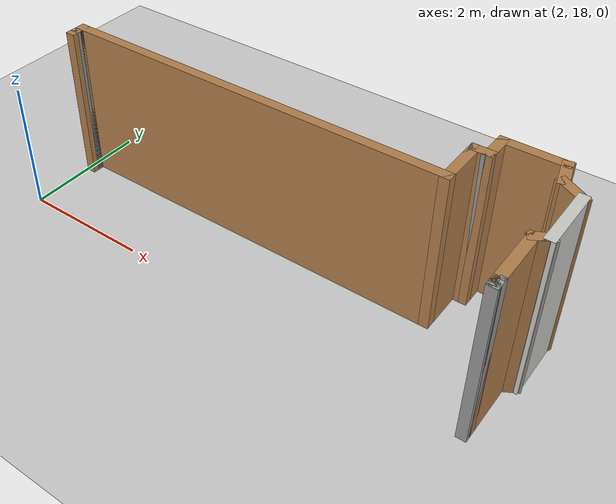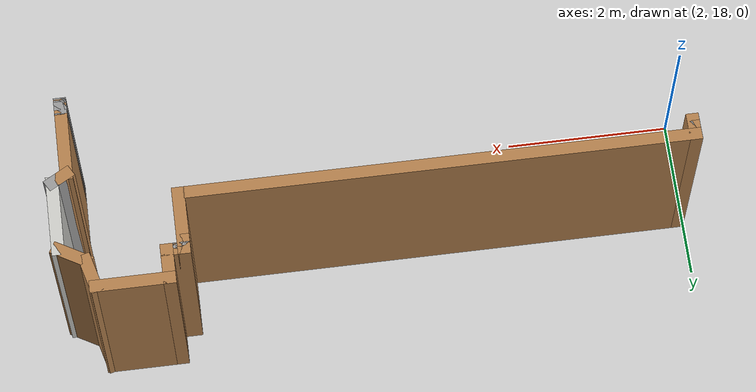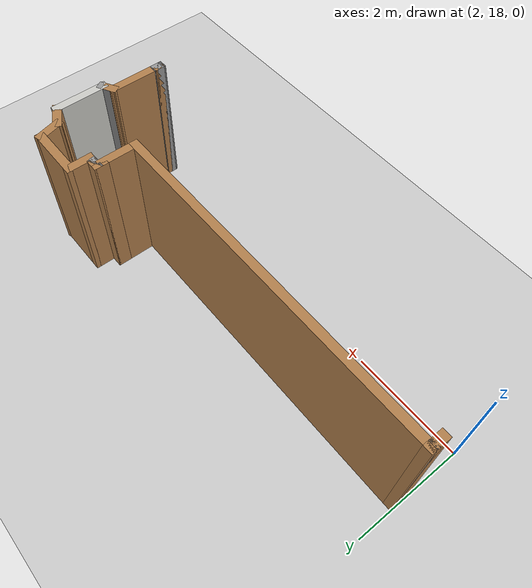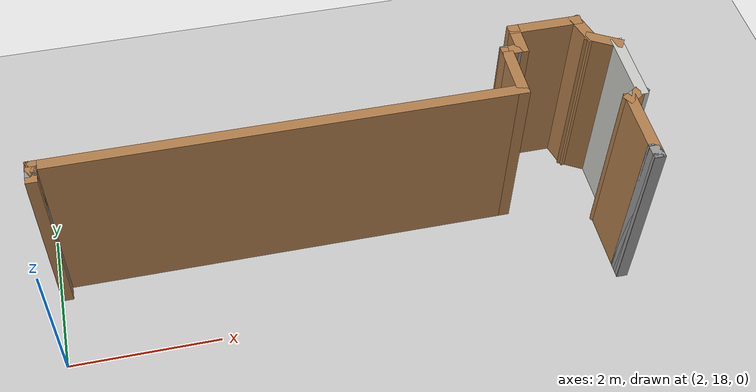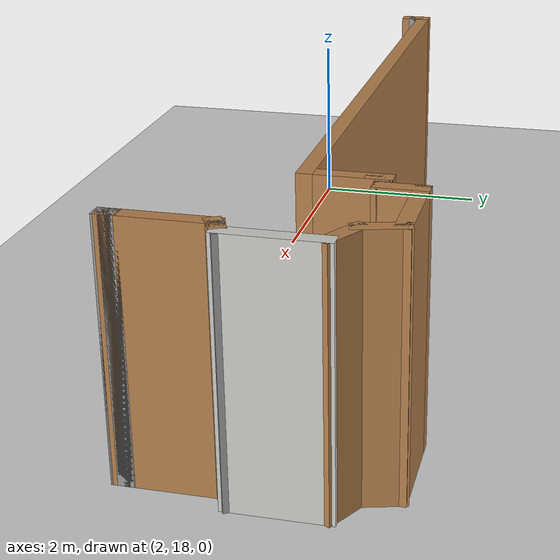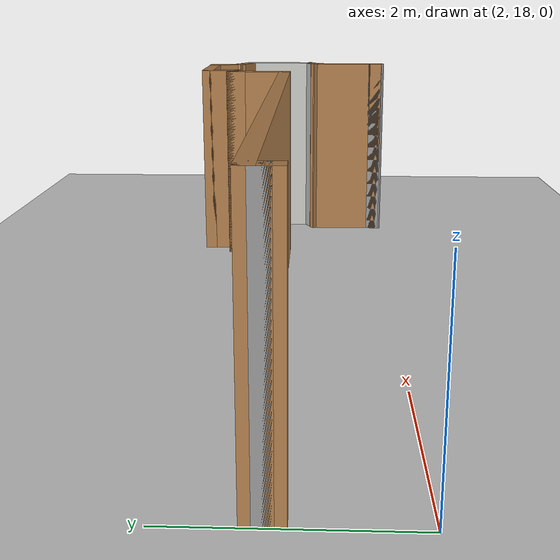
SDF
<sdf version="1.6">
 <world name="default">
  <model name="ground_plane">
   <static>1</static>
   <link name="link">
    <collision name="collision">
     <geometry><plane><normal>0 0 1</normal><size>100 100</size></plane></geometry>
     <surface>
      <contact><collide_bitmask>65535</collide_bitmask></contact>
      <friction><ode><mu>100</mu><mu2>50</mu2></ode></friction>
     </surface>
    </collision>
    <visual name="visual">
     <cast_shadows>0</cast_shadows>
     <geometry><plane><normal>0 0 1</normal><size>100 100</size></plane></geometry>
     <material>
      <script><uri>file://media/materials/scripts/gazebo.material</uri><name>Gazebo/Grey</name></script>
     </material>
    </visual>
   </link>
  </model>
  <model name="ecst_lab_v2">
   <pose>2.38151 7.60499 0 0 -0 -1.57079</pose>
   <link name="Wall_100">
    <collision name="Wall_100_Collision">
     <geometry><box><size>1 0.15 2.5</size></box></geometry>
     <pose>0 0 1.25 0 -0 0</pose>
    </collision>
    <visual name="Wall_100_Visual">
     <pose>0 0 1.25 0 -0 0</pose>
     <geometry><box><size>1 0.15 2.5</size></box></geometry>
     <material>
      <script><uri>file://media/materials/scripts/gazebo.material</uri><name>Gazebo/Wood</name></script>
      <ambient>1 1 1 1</ambient>
     </material>
     <meta><layer>0</layer></meta>
    </visual>
    <pose>-10.8485 7.06822 0 0 -0 0</pose>
   </link>
   <link name="Wall_101">
    <collision name="Wall_101_Collision">
     <geometry><box><size>0.15 0.15 2.5</size></box></geometry>
     <pose>0 0 1.25 0 -0 0</pose>
    </collision>
    <visual name="Wall_101_Visual">
     <pose>0 0 1.25 0 -0 0</pose>
     <geometry><box><size>0.15 0.15 2.5</size></box></geometry>
     <material>
      <script><uri>file://media/materials/scripts/gazebo.material</uri><name>Gazebo/Grey</name></script>
      <ambient>1 1 1 1</ambient>
     </material>
     <meta><layer>0</layer></meta>
    </visual>
    <pose>-10.4235 7.06822 0 0 -0 0</pose>
   </link>
   <link name="Wall_102">
    <collision name="Wall_102_Collision">
     <geometry><box><size>0.16 0.15 2.5</size></box></geometry>
     <pose>0 0 1.25 0 -0 0</pose>
    </collision>
    <visual name="Wall_102_Visual">
     <pose>0 0 1.25 0 -0 0</pose>
     <geometry><box><size>0.16 0.15 2.5</size></box></geometry>
     <material>
      <script><uri>file://media/materials/scripts/gazebo.material</uri><name>Gazebo/Grey</name></script>
      <ambient>1 1 1 1</ambient>
     </material>
     <meta><layer>0</layer></meta>
    </visual>
    <pose>-10.4185 7.06822 0 0 -0 0</pose>
   </link>
   <link name="Wall_103">
    <collision name="Wall_103_Collision">
     <geometry><box><size>0.16 0.15 2.5</size></box></geometry>
     <pose>0 0 1.25 0 -0 0</pose>
    </collision>
    <visual name="Wall_103_Visual">
     <pose>0 0 1.25 0 -0 0</pose>
     <geometry><box><size>0.16 0.15 2.5</size></box></geometry>
     <material>
      <script><uri>file://media/materials/scripts/gazebo.material</uri><name>Gazebo/Grey</name></script>
      <ambient>1 1 1 1</ambient>
     </material>
     <meta><layer>0</layer></meta>
    </visual>
    <pose>-10.4085 7.06822 0 0 -0 0</pose>
   </link>
   <link name="Wall_104">
    <collision name="Wall_104_Collision">
     <geometry><box><size>0.16 0.15 2.5</size></box></geometry>
     <pose>0 0 1.25 0 -0 0</pose>
    </collision>
    <visual name="Wall_104_Visual">
     <pose>0 0 1.25 0 -0 0</pose>
     <geometry><box><size>0.16 0.15 2.5</size></box></geometry>
     <material>
      <script><uri>file://media/materials/scripts/gazebo.material</uri><name>Gazebo/Wood</name></script>
      <ambient>1 1 1 1</ambient>
     </material>
     <meta><layer>0</layer></meta>
    </visual>
    <pose>-10.3985 7.06822 0 0 -0 0</pose>
   </link>
   <link name="Wall_105">
    <collision name="Wall_105_Collision">
     <geometry><box><size>0.16 0.15 2.5</size></box></geometry>
     <pose>0 0 1.25 0 -0 0</pose>
    </collision>
    <visual name="Wall_105_Visual">
     <pose>0 0 1.25 0 -0 0</pose>
     <geometry><box><size>0.16 0.15 2.5</size></box></geometry>
     <material>
      <script><uri>file://media/materials/scripts/gazebo.material</uri><name>Gazebo/Grey</name></script>
      <ambient>1 1 1 1</ambient>
     </material>
     <meta><layer>0</layer></meta>
    </visual>
    <pose>-10.3885 7.06822 0 0 -0 0</pose>
   </link>
   <link name="Wall_106">
    <collision name="Wall_106_Collision">
     <geometry><box><size>0.16 0.15 2.5</size></box></geometry>
     <pose>0 0 1.25 0 -0 0</pose>
    </collision>
    <visual name="Wall_106_Visual">
     <pose>0 0 1.25 0 -0 0</pose>
     <geometry><box><size>0.16 0.15 2.5</size></box></geometry>
     <material>
      <script><uri>file://media/materials/scripts/gazebo.material</uri><name>Gazebo/Wood</name></script>
      <ambient>1 1 1 1</ambient>
     </material>
     <meta><layer>0</layer></meta>
    </visual>
    <pose>-10.3785 7.06822 0 0 -0 0</pose>
   </link>
   <link name="Wall_107">
    <collision name="Wall_107_Collision">
     <geometry><box><size>0.16 0.15 2.5</size></box></geometry>
     <pose>0 0 1.25 0 -0 0</pose>
    </collision>
    <visual name="Wall_107_Visual">
     <pose>0 0 1.25 0 -0 0</pose>
     <geometry><box><size>0.16 0.15 2.5</size></box></geometry>
     <material>
      <script><uri>file://media/materials/scripts/gazebo.material</uri><name>Gazebo/Grey</name></script>
      <ambient>1 1 1 1</ambient>
     </material>
     <meta><layer>0</layer></meta>
    </visual>
    <pose>-10.3685 7.06822 0 0 -0 0</pose>
   </link>
   <link name="Wall_108">
    <collision name="Wall_108_Collision">
     <geometry><box><size>0.16 0.15 2.5</size></box></geometry>
     <pose>0 0 1.25 0 -0 0</pose>
    </collision>
    <visual name="Wall_108_Visual">
     <pose>0 0 1.25 0 -0 0</pose>
     <geometry><box><size>0.16 0.15 2.5</size></box></geometry>
     <material>
      <script><uri>file://media/materials/scripts/gazebo.material</uri><name>Gazebo/Grey</name></script>
      <ambient>1 1 1 1</ambient>
     </material>
     <meta><layer>0</layer></meta>
    </visual>
    <pose>-10.3685 7.06822 0 0 -0 3.14159</pose>
   </link>
   <link name="Wall_109">
    <collision name="Wall_109_Collision">
     <geometry><box><size>0.16 0.15 2.5</size></box></geometry>
     <pose>0 0 1.25 0 -0 0</pose>
    </collision>
    <visual name="Wall_109_Visual">
     <pose>0 0 1.25 0 -0 0</pose>
     <geometry><box><size>0.16 0.15 2.5</size></box></geometry>
     <material>
      <script><uri>file://media/materials/scripts/gazebo.material</uri><name>Gazebo/Grey</name></script>
      <ambient>1 1 1 1</ambient>
     </material>
     <meta><layer>0</layer></meta>
    </visual>
    <pose>-10.3685 7.06822 0 0 -0 0</pose>
   </link>
   <link name="Wall_110">
    <collision name="Wall_110_Collision">
     <geometry><box><size>0.16 0.15 2.5</size></box></geometry>
     <pose>0 0 1.25 0 -0 0</pose>
    </collision>
    <visual name="Wall_110_Visual">
     <pose>0 0 1.25 0 -0 0</pose>
     <geometry><box><size>0.16 0.15 2.5</size></box></geometry>
     <material>
      <script><uri>file://media/materials/scripts/gazebo.material</uri><name>Gazebo/Grey</name></script>
      <ambient>1 1 1 1</ambient>
     </material>
     <meta><layer>0</layer></meta>
    </visual>
    <pose>-10.3685 7.06822 0 0 -0 3.14159</pose>
   </link>
   <link name="Wall_111">
    <collision name="Wall_111_Collision">
     <geometry><box><size>0.16 0.15 2.5</size></box></geometry>
     <pose>0 0 1.25 0 -0 0</pose>
    </collision>
    <visual name="Wall_111_Visual">
     <pose>0 0 1.25 0 -0 0</pose>
     <geometry><box><size>0.16 0.15 2.5</size></box></geometry>
     <material>
      <script><uri>file://media/materials/scripts/gazebo.material</uri><name>Gazebo/Grey</name></script>
      <ambient>1 1 1 1</ambient>
     </material>
     <meta><layer>0</layer></meta>
    </visual>
    <pose>-10.3685 7.06822 0 0 -0 0</pose>
   </link>
   <link name="Wall_112">
    <collision name="Wall_112_Collision">
     <geometry><box><size>0.16 0.15 2.5</size></box></geometry>
     <pose>0 0 1.25 0 -0 0</pose>
    </collision>
    <visual name="Wall_112_Visual">
     <pose>0 0 1.25 0 -0 0</pose>
     <geometry><box><size>0.16 0.15 2.5</size></box></geometry>
     <material>
      <script><uri>file://media/materials/scripts/gazebo.material</uri><name>Gazebo/Grey</name></script>
      <ambient>1 1 1 1</ambient>
     </material>
     <meta><layer>0</layer></meta>
    </visual>
    <pose>-10.3685 7.06822 0 0 -0 3.14159</pose>
   </link>
   <link name="Wall_113">
    <collision name="Wall_113_Collision">
     <geometry><box><size>0.16 0.15 2.5</size></box></geometry>
     <pose>0 0 1.25 0 -0 0</pose>
    </collision>
    <visual name="Wall_113_Visual">
     <pose>0 0 1.25 0 -0 0</pose>
     <geometry><box><size>0.16 0.15 2.5</size></box></geometry>
     <material>
      <script><uri>file://media/materials/scripts/gazebo.material</uri><name>Gazebo/Grey</name></script>
      <ambient>1 1 1 1</ambient>
     </material>
     <meta><layer>0</layer></meta>
    </visual>
    <pose>-10.3685 7.06822 0 0 -0 0</pose>
   </link>
   <link name="Wall_114">
    <collision name="Wall_114_Collision">
     <geometry><box><size>0.16 0.15 2.5</size></box></geometry>
     <pose>0 0 1.25 0 -0 0</pose>
    </collision>
    <visual name="Wall_114_Visual">
     <pose>0 0 1.25 0 -0 0</pose>
     <geometry><box><size>0.16 0.15 2.5</size></box></geometry>
     <material>
      <script><uri>file://media/materials/scripts/gazebo.material</uri><name>Gazebo/Grey</name></script>
      <ambient>1 1 1 1</ambient>
     </material>
     <meta><layer>0</layer></meta>
    </visual>
    <pose>-10.3685 7.06822 0 0 -0 3.14159</pose>
   </link>
   <link name="Wall_115">
    <collision name="Wall_115_Collision">
     <geometry><box><size>0.16 0.15 2.5</size></box></geometry>
     <pose>0 0 1.25 0 -0 0</pose>
    </collision>
    <visual name="Wall_115_Visual">
     <pose>0 0 1.25 0 -0 0</pose>
     <geometry><box><size>0.16 0.15 2.5</size></box></geometry>
     <material>
      <script><uri>file://media/materials/scripts/gazebo.material</uri><name>Gazebo/Wood</name></script>
      <ambient>1 1 1 1</ambient>
     </material>
     <meta><layer>0</layer></meta>
    </visual>
    <pose>-10.3685 7.06822 0 0 -0 0</pose>
   </link>
   <link name="Wall_116">
    <collision name="Wall_116_Collision">
     <geometry><box><size>0.16 0.15 2.5</size></box></geometry>
     <pose>0 0 1.25 0 -0 0</pose>
    </collision>
    <visual name="Wall_116_Visual">
     <pose>0 0 1.25 0 -0 0</pose>
     <geometry><box><size>0.16 0.15 2.5</size></box></geometry>
     <material>
      <script><uri>file://media/materials/scripts/gazebo.material</uri><name>Gazebo/Grey</name></script>
      <ambient>1 1 1 1</ambient>
     </material>
     <meta><layer>0</layer></meta>
    </visual>
    <pose>-10.3585 7.06822 0 0 -0 0</pose>
   </link>
   <link name="Wall_82">
    <collision name="Wall_82_Collision">
     <geometry><box><size>0.25 0.15 2.5</size></box></geometry>
     <pose>0 0 1.25 0 -0 0</pose>
    </collision>
    <visual name="Wall_82_Visual">
     <pose>0 0 1.25 0 -0 0</pose>
     <geometry><box><size>0.25 0.15 2.5</size></box></geometry>
     <material>
      <script><uri>file://media/materials/scripts/gazebo.material</uri><name>Gazebo/Wood</name></script>
      <ambient>1 1 1 1</ambient>
     </material>
     <meta><layer>0</layer></meta>
    </visual>
    <pose>-11.5466 -0.302274 0 0 -0 3.14159</pose>
   </link>
   <link name="Wall_83">
    <collision name="Wall_83_Collision">
     <geometry><box><size>0.15 0.15 2.5</size></box></geometry>
     <pose>0 0 1.25 0 -0 0</pose>
    </collision>
    <visual name="Wall_83_Visual">
     <pose>0 0 1.25 0 -0 0</pose>
     <geometry><box><size>0.15 0.15 2.5</size></box></geometry>
     <material>
      <script><uri>file://media/materials/scripts/gazebo.material</uri><name>Gazebo/Grey</name></script>
      <ambient>1 1 1 1</ambient>
     </material>
     <meta><layer>0</layer></meta>
    </visual>
    <pose>-11.5966 -0.302274 0 0 -0 0</pose>
   </link>
   <link name="Wall_84">
    <collision name="Wall_84_Collision">
     <geometry><box><size>0.16 0.15 2.5</size></box></geometry>
     <pose>0 0 1.25 0 -0 0</pose>
    </collision>
    <visual name="Wall_84_Visual">
     <pose>0 0 1.25 0 -0 0</pose>
     <geometry><box><size>0.16 0.15 2.5</size></box></geometry>
     <material>
      <script><uri>file://media/materials/scripts/gazebo.material</uri><name>Gazebo/Grey</name></script>
      <ambient>1 1 1 1</ambient>
     </material>
     <meta><layer>0</layer></meta>
    </visual>
    <pose>-11.5916 -0.302274 0 0 -0 0</pose>
   </link>
   <link name="Wall_85">
    <collision name="Wall_85_Collision">
     <geometry><box><size>0.25 0.15 2.5</size></box></geometry>
     <pose>0 0 1.25 0 -0 0</pose>
    </collision>
    <visual name="Wall_85_Visual">
     <pose>0 0 1.25 0 -0 0</pose>
     <geometry><box><size>0.25 0.15 2.5</size></box></geometry>
     <material>
      <script><uri>file://media/materials/scripts/gazebo.material</uri><name>Gazebo/Wood</name></script>
      <ambient>1 1 1 1</ambient>
     </material>
     <meta><layer>0</layer></meta>
    </visual>
    <pose>-11.6366 -0.302274 0 0 -0 3.14159</pose>
   </link>
   <link name="Wall_86">
    <collision name="Wall_86_Collision">
     <geometry><box><size>6.25 0.15 2.5</size></box></geometry>
     <pose>0 0 1.25 0 -0 0</pose>
    </collision>
    <visual name="Wall_86_Visual">
     <pose>0 0 1.25 0 -0 0</pose>
     <geometry><box><size>6.25 0.15 2.5</size></box></geometry>
     <material>
      <script><uri>file://media/materials/scripts/gazebo.material</uri><name>Gazebo/Wood</name></script>
      <ambient>1 1 1 1</ambient>
     </material>
     <meta><layer>0</layer></meta>
    </visual>
    <pose>-11.6866 2.74773 0 0 -0 1.5708</pose>
   </link>
   <link name="Wall_87">
    <collision name="Wall_87_Collision">
     <geometry><box><size>0.75 0.15 2.5</size></box></geometry>
     <pose>0 0 1.25 0 -0 0</pose>
    </collision>
    <visual name="Wall_87_Visual">
     <pose>0 0 1.25 0 -0 0</pose>
     <geometry><box><size>0.75 0.15 2.5</size></box></geometry>
     <material>
      <script><uri>file://media/materials/scripts/gazebo.material</uri><name>Gazebo/Wood</name></script>
      <ambient>1 1 1 1</ambient>
     </material>
     <meta><layer>0</layer></meta>
    </visual>
    <pose>-11.9866 5.79773 0 0 -0 3.14159</pose>
   </link>
   <link name="Wall_88">
    <collision name="Wall_88_Collision">
     <geometry><box><size>0.25 0.15 2.5</size></box></geometry>
     <pose>0 0 1.25 0 -0 0</pose>
    </collision>
    <visual name="Wall_88_Visual">
     <pose>0 0 1.25 0 -0 0</pose>
     <geometry><box><size>0.25 0.15 2.5</size></box></geometry>
     <material>
      <script><uri>file://media/materials/scripts/gazebo.material</uri><name>Gazebo/Wood</name></script>
      <ambient>1 1 1 1</ambient>
     </material>
     <meta><layer>0</layer></meta>
    </visual>
    <pose>-12.3366 5.79773 0 0 -0 3.14159</pose>
   </link>
   <link name="Wall_89">
    <collision name="Wall_89_Collision">
     <geometry><box><size>0.25 0.15 2.5</size></box></geometry>
     <pose>0 0 1.25 0 -0 0</pose>
    </collision>
    <visual name="Wall_89_Visual">
     <pose>0 0 1.25 0 -0 0</pose>
     <geometry><box><size>0.25 0.15 2.5</size></box></geometry>
     <material>
      <script><uri>file://media/materials/scripts/gazebo.material</uri><name>Gazebo/Grey</name></script>
      <ambient>1 1 1 1</ambient>
     </material>
     <meta><layer>0</layer></meta>
    </visual>
    <pose>-12.3866 5.84773 0 0 -0 1.5708</pose>
   </link>
   <link name="Wall_90">
    <collision name="Wall_90_Collision">
     <geometry><box><size>0.25 0.15 2.5</size></box></geometry>
     <pose>0 0 1.25 0 -0 0</pose>
    </collision>
    <visual name="Wall_90_Visual">
     <pose>0 0 1.25 0 -0 0</pose>
     <geometry><box><size>0.25 0.15 2.5</size></box></geometry>
     <material>
      <script><uri>file://media/materials/scripts/gazebo.material</uri><name>Gazebo/Wood</name></script>
      <ambient>1 1 1 1</ambient>
     </material>
     <meta><layer>0</layer></meta>
    </visual>
    <pose>-12.3866 5.84773 0 0 -0 -1.5708</pose>
   </link>
   <link name="Wall_91">
    <collision name="Wall_91_Collision">
     <geometry><box><size>0.25 0.15 2.5</size></box></geometry>
     <pose>0 0 1.25 0 -0 0</pose>
    </collision>
    <visual name="Wall_91_Visual">
     <pose>0 0 1.25 0 -0 0</pose>
     <geometry><box><size>0.25 0.15 2.5</size></box></geometry>
     <material>
      <script><uri>file://media/materials/scripts/gazebo.material</uri><name>Gazebo/Wood</name></script>
      <ambient>1 1 1 1</ambient>
     </material>
     <meta><layer>0</layer></meta>
    </visual>
    <pose>-12.3866 5.84773 0 0 -0 1.5708</pose>
   </link>
   <link name="Wall_92">
    <collision name="Wall_92_Collision">
     <geometry><box><size>0.25 0.15 2.5</size></box></geometry>
     <pose>0 0 1.25 0 -0 0</pose>
    </collision>
    <visual name="Wall_92_Visual">
     <pose>0 0 1.25 0 -0 0</pose>
     <geometry><box><size>0.25 0.15 2.5</size></box></geometry>
     <material>
      <script><uri>file://media/materials/scripts/gazebo.material</uri><name>Gazebo/Wood</name></script>
      <ambient>1 1 1 1</ambient>
     </material>
     <meta><layer>0</layer></meta>
    </visual>
    <pose>-12.3866 5.94773 0 0 -0 1.5708</pose>
   </link>
   <link name="Wall_93">
    <collision name="Wall_93_Collision">
     <geometry><box><size>0.5 0.15 2.5</size></box></geometry>
     <pose>0 0 1.25 0 -0 0</pose>
    </collision>
    <visual name="Wall_93_Visual">
     <pose>0 0 1.25 0 -0 0</pose>
     <geometry><box><size>0.5 0.15 2.5</size></box></geometry>
     <material>
      <script><uri>file://media/materials/scripts/gazebo.material</uri><name>Gazebo/Wood</name></script>
      <ambient>1 1 1 1</ambient>
     </material>
     <meta><layer>0</layer></meta>
    </visual>
    <pose>-12.5616 5.99773 0 0 -0 3.14159</pose>
   </link>
   <link name="Wall_94">
    <collision name="Wall_94_Collision">
     <geometry><box><size>1 0.15 2.5</size></box></geometry>
     <pose>0 0 1.25 0 -0 0</pose>
    </collision>
    <visual name="Wall_94_Visual">
     <pose>0 0 1.25 0 -0 0</pose>
     <geometry><box><size>1 0.15 2.5</size></box></geometry>
     <material>
      <script><uri>file://media/materials/scripts/gazebo.material</uri><name>Gazebo/Wood</name></script>
      <ambient>1 1 1 1</ambient>
     </material>
     <meta><layer>0</layer></meta>
    </visual>
    <pose>-12.7366 6.42273 0 0 -0 1.5708</pose>
   </link>
   <link name="Wall_95">
    <collision name="Wall_95_Collision">
     <geometry><box><size>0.5 0.15 2.5</size></box></geometry>
     <pose>0 0 1.25 0 -0 0</pose>
    </collision>
    <visual name="Wall_95_Visual">
     <pose>0 0 1.25 0 -0 0</pose>
     <geometry><box><size>0.5 0.15 2.5</size></box></geometry>
     <material>
      <script><uri>file://media/materials/scripts/gazebo.material</uri><name>Gazebo/Wood</name></script>
      <ambient>1 1 1 1</ambient>
     </material>
     <meta><layer>0</layer></meta>
    </visual>
    <pose>-12.5675 6.89302 0 0 -0 0.261799</pose>
   </link>
   <link name="Wall_96">
    <collision name="Wall_96_Collision">
     <geometry><box><size>0.5 0.15 2.5</size></box></geometry>
     <pose>0 0 1.25 0 -0 0</pose>
    </collision>
    <visual name="Wall_96_Visual">
     <pose>0 0 1.25 0 -0 0</pose>
     <geometry><box><size>0.5 0.15 2.5</size></box></geometry>
     <material>
      <script><uri>file://media/materials/scripts/gazebo.material</uri><name>Gazebo/Wood</name></script>
      <ambient>1 1 1 1</ambient>
     </material>
     <meta><layer>0</layer></meta>
    </visual>
    <pose>-12.311 7.08987 0 0 -0 1.0472</pose>
   </link>
   <link name="Wall_97">
    <collision name="Wall_97_Collision">
     <geometry><box><size>1 0.15 2.5</size></box></geometry>
     <pose>0 0 1.25 0 -0 0</pose>
    </collision>
    <visual name="Wall_97_Visual">
     <pose>0 0 1.25 0 -0 0</pose>
     <geometry><box><size>1 0.15 2.5</size></box></geometry>
     <material>
      <script><uri>file://media/materials/scripts/gazebo.material</uri><name>Gazebo/CeilingTiled</name></script>
      <ambient>1 1 1 1</ambient>
     </material>
     <meta><layer>0</layer></meta>
    </visual>
    <pose>-11.7985 7.24142 0 0 -0 0</pose>
   </link>
   <link name="Wall_98">
    <collision name="Wall_98_Collision">
     <geometry><box><size>0.25 0.15 2.5</size></box></geometry>
     <pose>0 0 1.25 0 -0 0</pose>
    </collision>
    <visual name="Wall_98_Visual">
     <pose>0 0 1.25 0 -0 0</pose>
     <geometry><box><size>0.25 0.15 2.5</size></box></geometry>
     <material>
      <script><uri>file://media/materials/scripts/gazebo.material</uri><name>Gazebo/Grey</name></script>
      <ambient>1 1 1 1</ambient>
     </material>
     <meta><layer>0</layer></meta>
    </visual>
    <pose>-11.3485 7.19812 0 0 -0 -1.0472</pose>
   </link>
   <link name="Wall_99">
    <collision name="Wall_99_Collision">
     <geometry><box><size>0.25 0.15 2.5</size></box></geometry>
     <pose>0 0 1.25 0 -0 0</pose>
    </collision>
    <visual name="Wall_99_Visual">
     <pose>0 0 1.25 0 -0 0</pose>
     <geometry><box><size>0.25 0.15 2.5</size></box></geometry>
     <material>
      <script><uri>file://media/materials/scripts/gazebo.material</uri><name>Gazebo/Wood</name></script>
      <ambient>1 1 1 1</ambient>
     </material>
     <meta><layer>0</layer></meta>
    </visual>
    <pose>-11.2985 7.11152 0 0 -0 -1.0472</pose>
   </link>
   <static>1</static>
  </model>
 </world>
</sdf>
